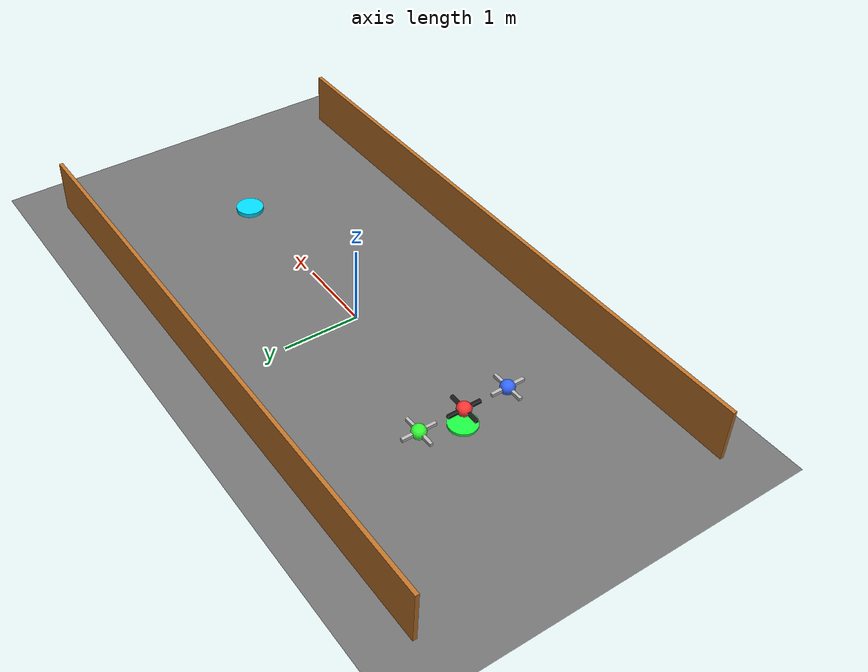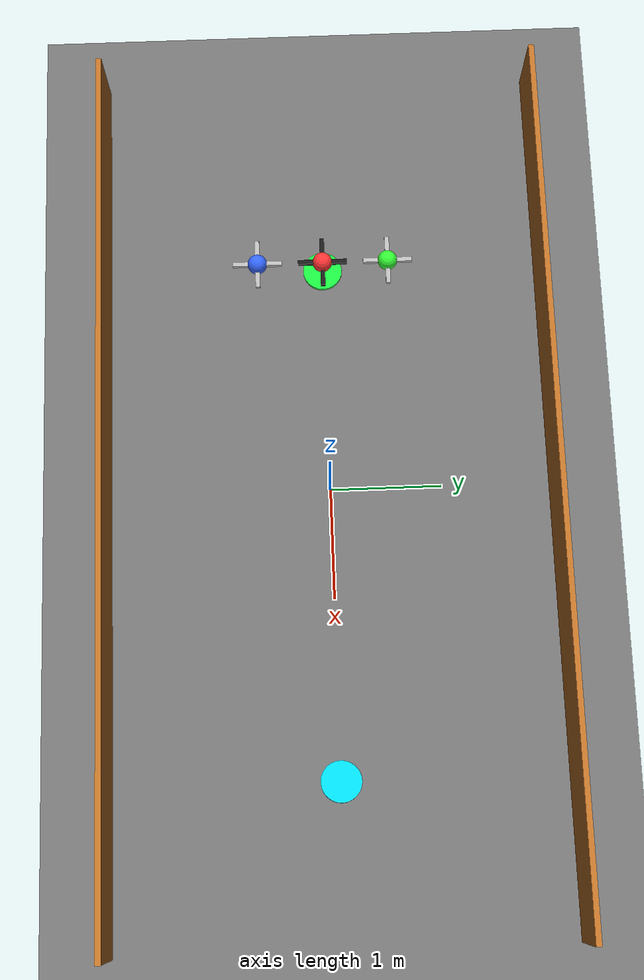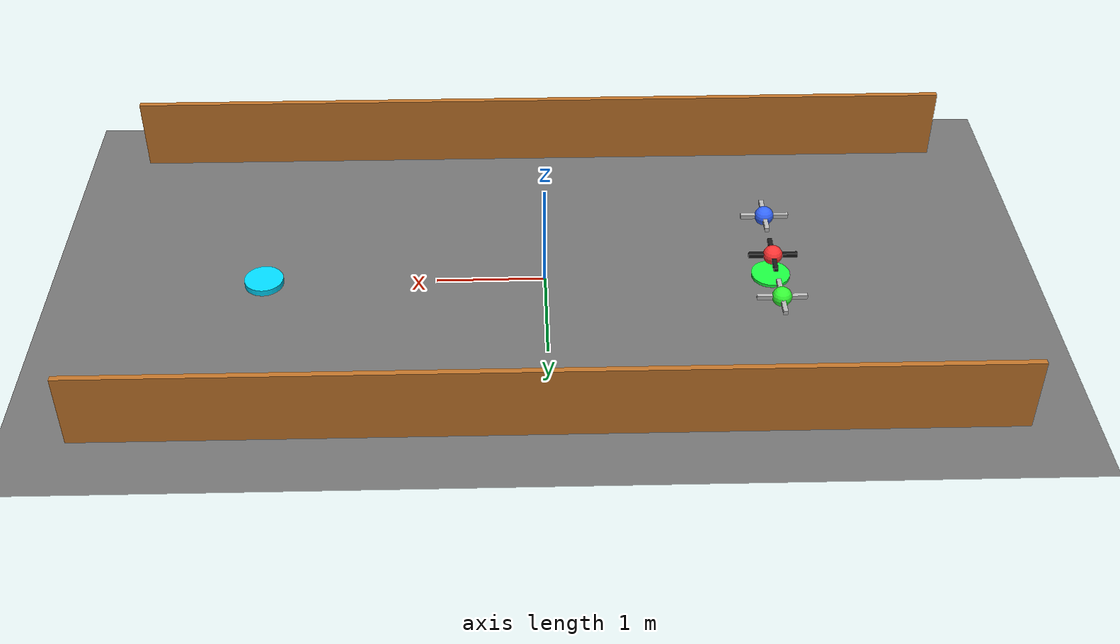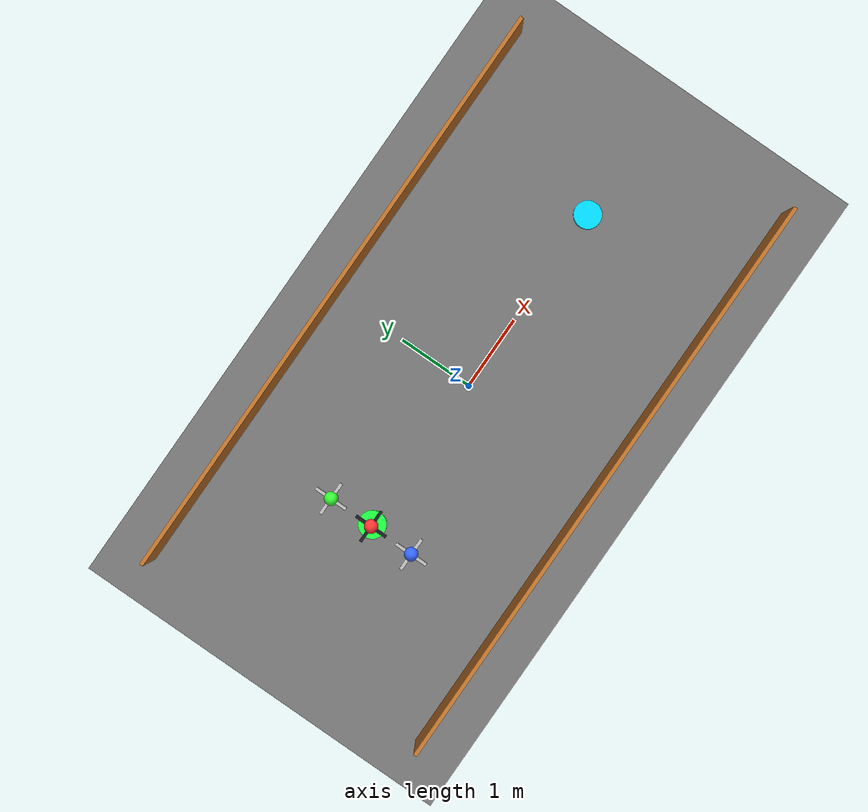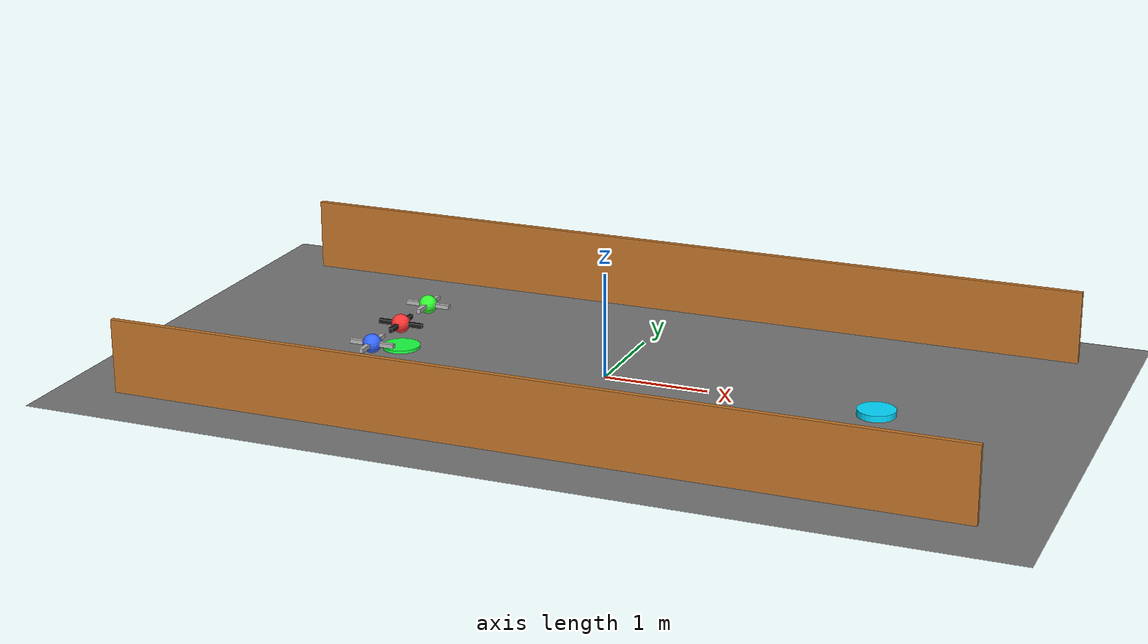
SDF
<?xml version="1.0" ?>
<sdf version="1.9">
  <world name="three_uav_kinematic_demo_world">

    <physics name="1ms" type="ignored">
      <max_step_size>0.001</max_step_size>
      <real_time_factor>1.0</real_time_factor>
    </physics>

    <plugin filename="gz-sim-physics-system" name="gz::sim::systems::Physics"/>
    <plugin filename="gz-sim-user-commands-system" name="gz::sim::systems::UserCommands"/>
    <plugin filename="gz-sim-scene-broadcaster-system" name="gz::sim::systems::SceneBroadcaster"/>

    <light type="directional" name="sun">
      <cast_shadows>true</cast_shadows>
      <pose>0 0 8 0 0 0</pose>
      <diffuse>0.95 0.95 0.95 1</diffuse>
      <specular>0.25 0.25 0.25 1</specular>
      <direction>-0.4 0.2 -0.9</direction>
    </light>

    <model name="ground_plane">
      <static>true</static>
      <link name="link">
        <collision name="collision">
          <geometry>
            <plane>
              <normal>0 0 1</normal>
              <size>8 4</size>
            </plane>
          </geometry>
        </collision>
        <visual name="visual">
          <geometry>
            <plane>
              <normal>0 0 1</normal>
              <size>8 4</size>
            </plane>
          </geometry>
          <material>
            <ambient>0.42 0.42 0.42 1</ambient>
            <diffuse>0.45 0.45 0.45 1</diffuse>
            <specular>0.05 0.05 0.05 1</specular>
          </material>
        </visual>
      </link>
    </model>

    <model name="left_wall">
      <static>true</static>
      <pose>0 2.0 0.35 0 0 0</pose>
      <link name="link">
        <visual name="visual">
          <geometry>
            <box>
              <size>8.0 0.05 0.7</size>
            </box>
          </geometry>
          <material>
            <ambient>0.70 0.42 0.14 1</ambient>
            <diffuse>0.75 0.45 0.16 1</diffuse>
          </material>
        </visual>
      </link>
    </model>

    <model name="right_wall">
      <static>true</static>
      <pose>0 -2.0 0.35 0 0 0</pose>
      <link name="link">
        <visual name="visual">
          <geometry>
            <box>
              <size>8.0 0.05 0.7</size>
            </box>
          </geometry>
          <material>
            <ambient>0.70 0.42 0.14 1</ambient>
            <diffuse>0.75 0.45 0.16 1</diffuse>
          </material>
        </visual>
      </link>
    </model>

    <model name="start_marker">
      <static>true</static>
      <pose>-2.1 0 0.02 0 0 0</pose>
      <link name="link">
        <visual name="visual">
          <geometry>
            <cylinder>
              <radius>0.18</radius>
              <length>0.03</length>
            </cylinder>
          </geometry>
          <material>
            <ambient>0.1 1.0 0.25 1</ambient>
            <diffuse>0.1 1.0 0.25 1</diffuse>
          </material>
        </visual>
      </link>
    </model>

    <model name="goal_marker">
      <static>true</static>
      <pose>2.6 0 0.03 0 0 0</pose>
      <link name="link">
        <visual name="visual">
          <geometry>
            <cylinder>
              <radius>0.18</radius>
              <length>0.06</length>
            </cylinder>
          </geometry>
          <material>
            <ambient>0.0 0.85 1.0 1</ambient>
            <diffuse>0.0 0.85 1.0 1</diffuse>
          </material>
        </visual>
      </link>
    </model>

    <!-- UAV proxy 1 -->
    <model name="uav1">
      <static>false</static>
      <pose>-2.1 0.0 0.25 0 0 0</pose>
      <link name="body">
        <visual name="center">
          <geometry>
            <sphere>
              <radius>0.09</radius>
            </sphere>
          </geometry>
          <material>
            <ambient>1.0 0.2 0.2 1</ambient>
            <diffuse>1.0 0.2 0.2 1</diffuse>
          </material>
        </visual>
        <visual name="arm_x">
          <geometry>
            <box>
              <size>0.45 0.04 0.04</size>
            </box>
          </geometry>
          <material>
            <ambient>0.1 0.1 0.1 1</ambient>
            <diffuse>0.1 0.1 0.1 1</diffuse>
          </material>
        </visual>
        <visual name="arm_y">
          <geometry>
            <box>
              <size>0.04 0.45 0.04</size>
            </box>
          </geometry>
          <material>
            <ambient>0.1 0.1 0.1 1</ambient>
            <diffuse>0.1 0.1 0.1 1</diffuse>
          </material>
        </visual>
      </link>
    </model>

    <!-- UAV proxy 2 -->
    <model name="uav2">
      <static>false</static>
      <pose>-2.1 0.6 0.25 0 0 0</pose>
      <link name="body">
        <visual name="center">
          <geometry>
            <sphere>
              <radius>0.09</radius>
            </sphere>
          </geometry>
          <material>
            <ambient>0.2 1.0 0.2 1</ambient>
            <diffuse>0.2 1.0 0.2 1</diffuse>
          </material>
        </visual>
        <visual name="arm_x">
          <geometry>
            <box>
              <size>0.45 0.04 0.04</size>
            </box>
          </geometry>
        </visual>
        <visual name="arm_y">
          <geometry>
            <box>
              <size>0.04 0.45 0.04</size>
            </box>
          </geometry>
        </visual>
      </link>
    </model>

    <!-- UAV proxy 3 -->
    <model name="uav3">
      <static>false</static>
      <pose>-2.1 -0.6 0.25 0 0 0</pose>
      <link name="body">
        <visual name="center">
          <geometry>
            <sphere>
              <radius>0.09</radius>
            </sphere>
          </geometry>
          <material>
            <ambient>0.2 0.4 1.0 1</ambient>
            <diffuse>0.2 0.4 1.0 1</diffuse>
          </material>
        </visual>
        <visual name="arm_x">
          <geometry>
            <box>
              <size>0.45 0.04 0.04</size>
            </box>
          </geometry>
        </visual>
        <visual name="arm_y">
          <geometry>
            <box>
              <size>0.04 0.45 0.04</size>
            </box>
          </geometry>
        </visual>
      </link>
    </model>

  </world>
</sdf>
